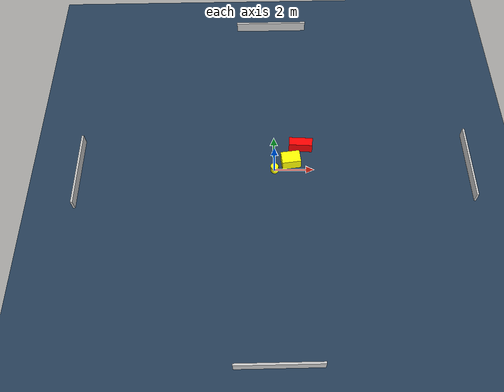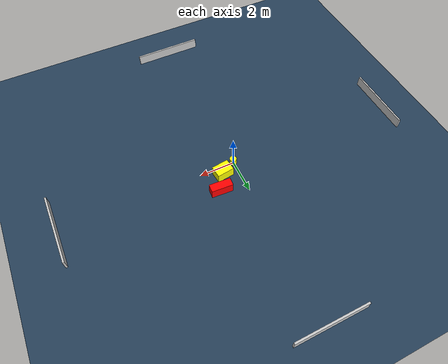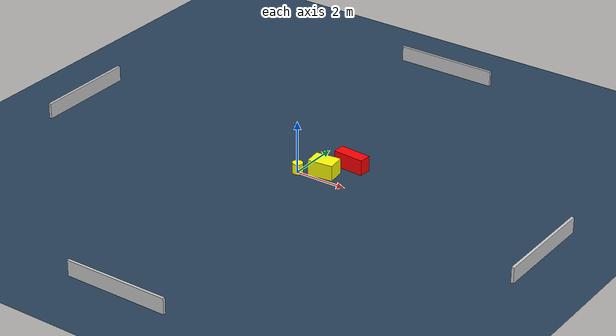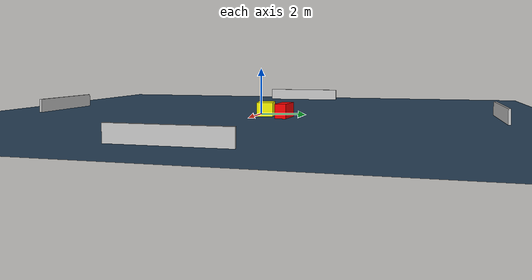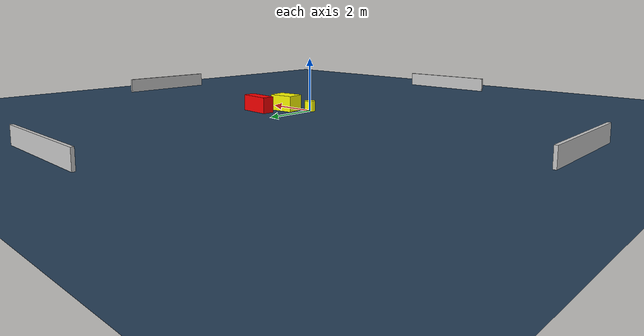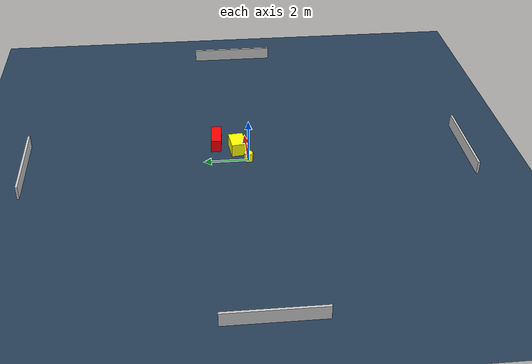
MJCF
<?xml version="1.0" ?>
<mujoco model="generated_environment">
  <option timestep="0.01" integrator="RK4" cone="elliptic"/>
  <default>
    <geom density="1"/>
  </default>
  <asset>
    <texture builtin="gradient" height="3072" name="skybox" rgb1="0.3 0.5 0.7" rgb2="0 0 0" type="skybox" width="512"/>
    <texture builtin="checker" height="300" name="groundplane" rgb1="0.2 0.3 0.4" rgb2="0.1 0.2 0.3" type="2d" width="300"/>
    <material name="groundplane" reflectance="0.2" texrepeat="5 5" texture="groundplane"/>
  </asset>
  <worldbody>
    <light dir="0 0 -1" directional="true" pos="0 0 1.5"/>
    <geom condim="3" friction="0.5 0.005 0.001" material="groundplane" name="floor" pos="0 0 0" size="0 0 0.05" type="plane"/>
    <body name="walls">
      <geom name="wall_1" condim="4" pos="-10.0 0.0 0.3" rgba="0.800000011920929 0.800000011920929 0.800000011920929 1.0" size="0.05 2.0 0.3" type="box"/>
      <geom name="wall_2" condim="4" pos="10.0 0.0 0.3" rgba="0.800000011920929 0.800000011920929 0.800000011920929 1.0" size="0.05 2.0 0.3" type="box"/>
      <geom name="wall_3" condim="4" pos="0.0 -10.0 0.3" rgba="0.800000011920929 0.800000011920929 0.800000011920929 1.0" size="2.0 0.05 0.3" type="box"/>
      <geom name="wall_4" condim="4" pos="0.0 10.0 0.3" rgba="0.800000011920929 0.800000011920929 0.800000011920929 1.0" size="2.0 0.05 0.3" type="box"/>
    </body>
    <body name="robot">
      <joint name="joint_x" type="slide" pos="0 0 0" axis="1 0 0"/>
      <joint name="joint_y" type="slide" pos="0 0 0" axis="0 1 0"/>
      <geom name="robot" type="cylinder" pos="0.0 0.0 0.2" size="0.2 0.2 0.0" mass="5.0" friction="1.0 0.005 0.0001" condim="4" rgba="1.0 1.0 0.0 1.0"/>
    </body>
    <body name="obstacle_1_movable">
      <geom name="obstacle_1_movable" condim="4" pos="0.8471930144581219 0.44253848943141094 0.3" euler="0 0 276.73341249976994" friction="0.0 0.005 0.001" rgba="1.0 1.0 0.0 1.0" size="0.33778566564379237 0.48353399277261916 0.3" type="box" mass="0.1"/>
      <joint type="free"/>
    </body>
    <body name="obstacle_2_static">
      <geom name="obstacle_2_static" condim="4" pos="1.3941526565839708 1.3775995682898343 0.3" euler="0 0 86.03168841243036" friction="0.0 0.005 0.001" rgba="1.0 0.0 0.0 1.0" size="0.23306283401397654 0.6062919155969339 0.3" type="box"/>
    </body>
  </worldbody>
  <actuator>
    <motor name="actuator_x" joint="joint_x" gear="1" ctrlrange="-1 1"/>
    <motor name="actuator_y" joint="joint_y" gear="1" ctrlrange="-1 1"/>
  </actuator>
</mujoco>
